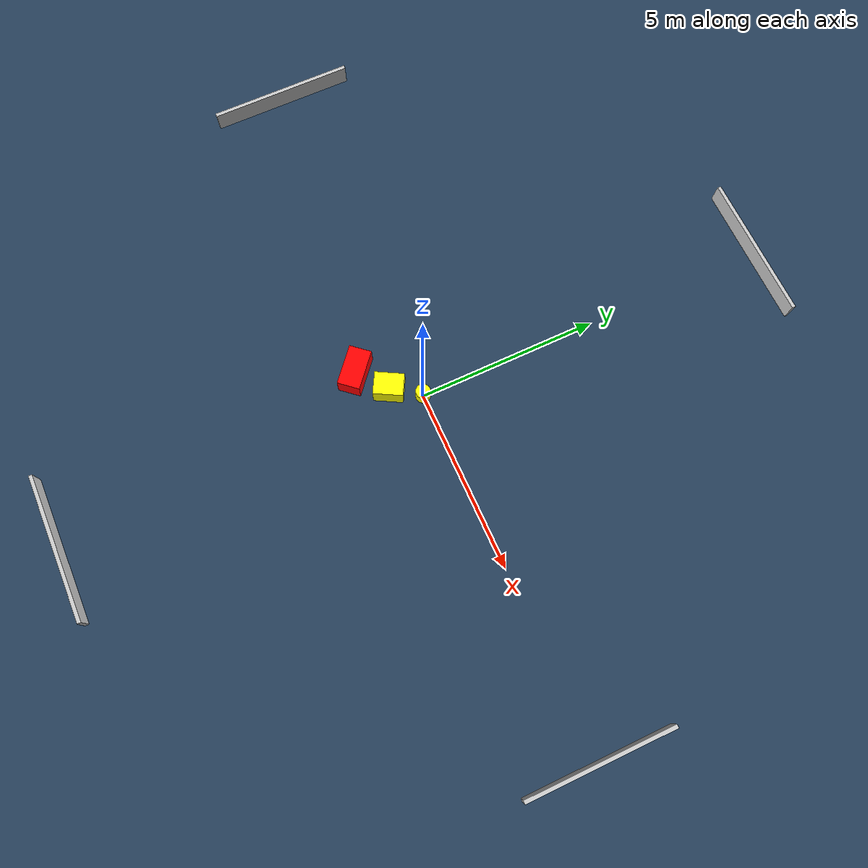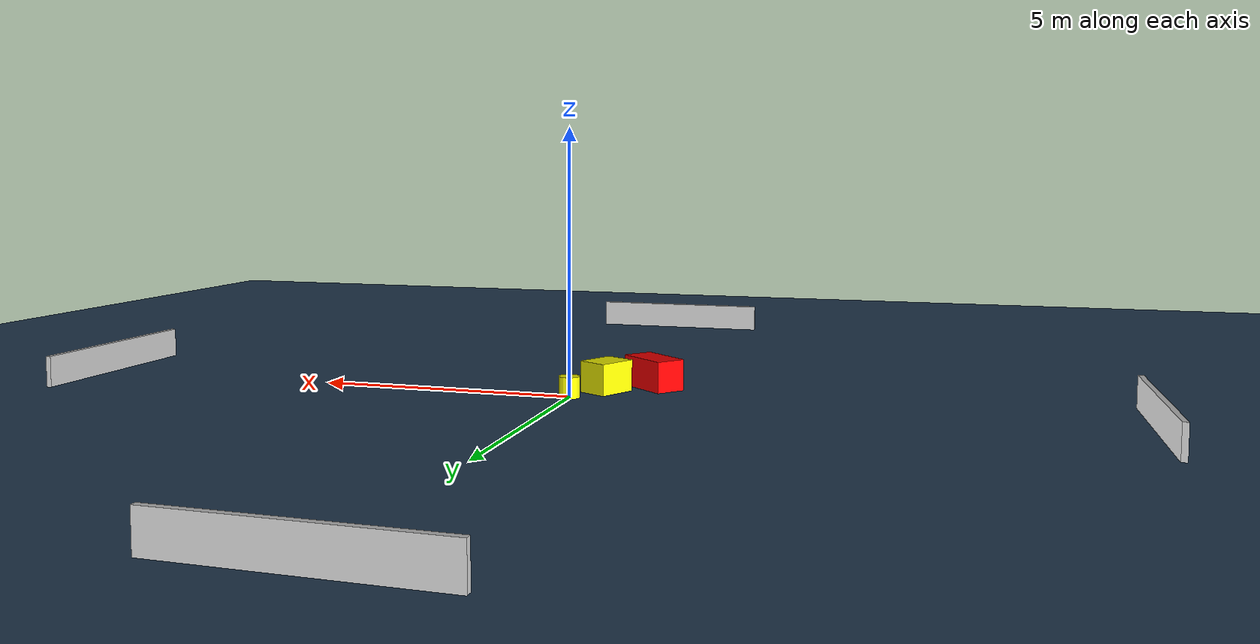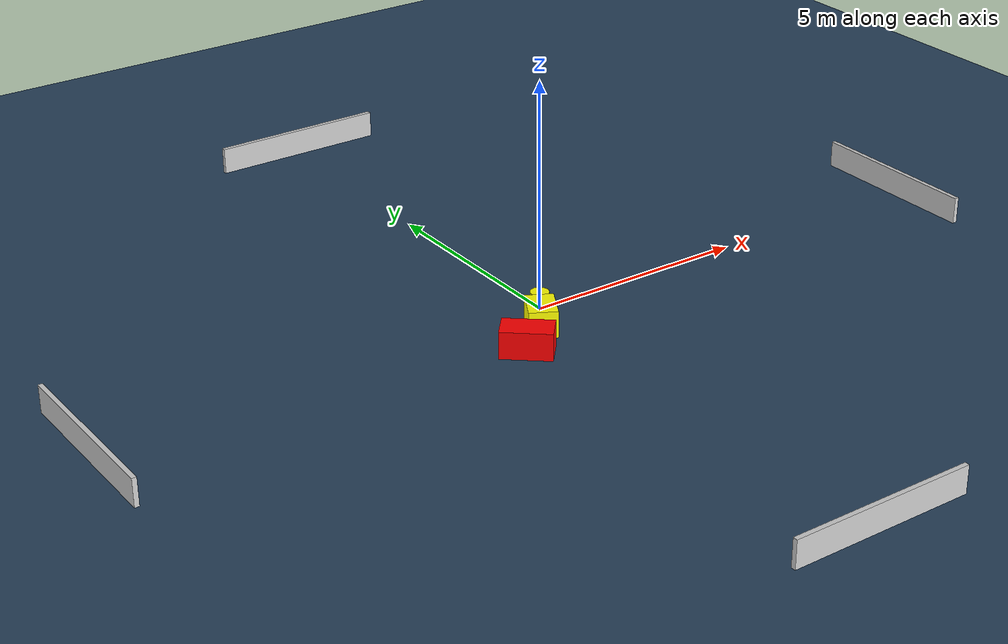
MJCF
<?xml version="1.0" ?>
<mujoco model="generated_environment">
  <option timestep="0.01" integrator="RK4" cone="elliptic"/>
  <default>
    <geom density="1"/>
  </default>
  <asset>
    <texture builtin="gradient" height="3072" name="skybox" rgb1="0.3 0.5 0.7" rgb2="0 0 0" type="skybox" width="512"/>
    <texture builtin="checker" height="300" name="groundplane" rgb1="0.2 0.3 0.4" rgb2="0.1 0.2 0.3" type="2d" width="300"/>
    <material name="groundplane" reflectance="0.2" texrepeat="5 5" texture="groundplane"/>
  </asset>
  <worldbody>
    <light dir="0 0 -1" directional="true" pos="0 0 1.5"/>
    <geom condim="3" friction="0.5 0.005 0.001" material="groundplane" name="floor" pos="0 0 0" size="0 0 0.05" type="plane"/>
    <body name="walls">
      <geom name="wall_1" condim="4" pos="-10.0 0.0 0.3" rgba="0.800000011920929 0.800000011920929 0.800000011920929 1.0" size="0.05 2.0 0.3" type="box"/>
      <geom name="wall_2" condim="4" pos="10.0 0.0 0.3" rgba="0.800000011920929 0.800000011920929 0.800000011920929 1.0" size="0.05 2.0 0.3" type="box"/>
      <geom name="wall_3" condim="4" pos="0.0 -10.0 0.3" rgba="0.800000011920929 0.800000011920929 0.800000011920929 1.0" size="2.0 0.05 0.3" type="box"/>
      <geom name="wall_4" condim="4" pos="0.0 10.0 0.3" rgba="0.800000011920929 0.800000011920929 0.800000011920929 1.0" size="2.0 0.05 0.3" type="box"/>
    </body>
    <body name="robot">
      <joint name="joint_x" type="slide" pos="0 0 0" axis="1 0 0"/>
      <joint name="joint_y" type="slide" pos="0 0 0" axis="0 1 0"/>
      <geom name="robot" type="cylinder" pos="0.0 0.0 0.2" size="0.2 0.2 0.0" mass="5.0" friction="1.0 0.005 0.0001" condim="4" rgba="1.0 1.0 0.0 1.0"/>
    </body>
    <body name="obstacle_1_movable">
      <geom name="obstacle_1_movable" condim="4" pos="-0.5049802382356062 -0.7576163813921624 0.3" euler="0 0 331.49216384065045" friction="0.0 0.005 0.001" rgba="1.0 1.0 0.0 1.0" size="0.30314380897045423 0.39707027445290055 0.3" type="box" mass="0.1"/>
      <joint type="free"/>
    </body>
    <body name="obstacle_2_static">
      <geom name="obstacle_2_static" condim="4" pos="-1.2923206034916492 -1.394166978737279 0.3" euler="0 0 229.50249882318846" friction="0.0 0.005 0.001" rgba="1.0 0.0 0.0 1.0" size="0.30570468864386574 0.5426650841715743 0.3" type="box"/>
    </body>
  </worldbody>
  <actuator>
    <motor name="actuator_x" joint="joint_x" gear="1" ctrlrange="-1 1"/>
    <motor name="actuator_y" joint="joint_y" gear="1" ctrlrange="-1 1"/>
  </actuator>
</mujoco>
